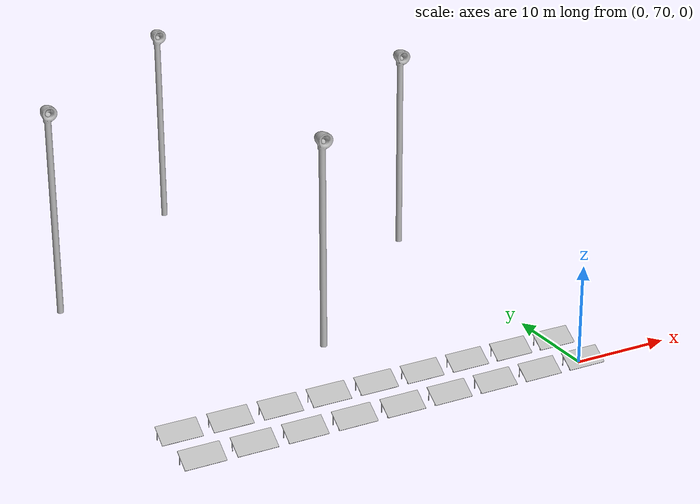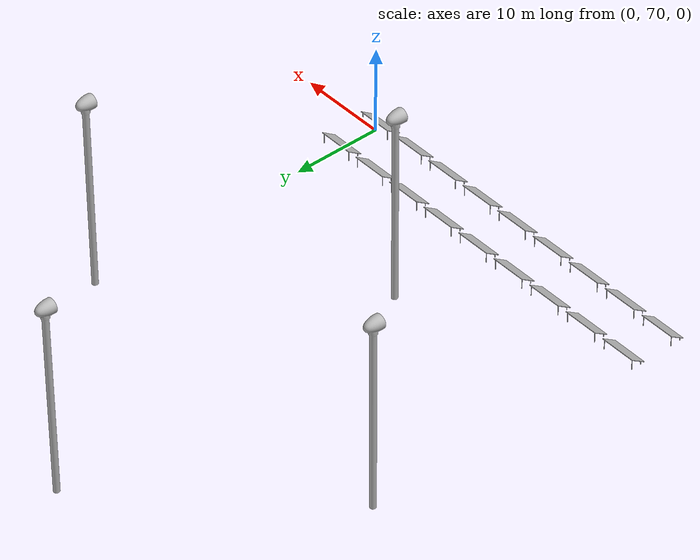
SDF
<sdf version="1.4">
 <world name="ATLAS_renewable_power_plant_world">
  <physics type="ode">
   <ode>
    <solver><type>quick</type><iters>10</iters><sor>1.3</sor></solver>
    <constraints>
     <cfm>0</cfm>
     <erp>0.2</erp>
     <contact_max_correcting_vel>100</contact_max_correcting_vel>
     <contact_surface_layer>0.001</contact_surface_layer>
    </constraints>
   </ode>
   <max_step_size>0.004</max_step_size>
   <real_time_factor>1</real_time_factor>
   <real_time_update_rate>250</real_time_update_rate>
   <gravity>0 0 -9.8</gravity>
   <magnetic_field>6e-06 2.3e-05 -4.2e-05</magnetic_field>
  </physics>
  <include><uri>model://sun</uri></include>
  <include>
   <uri>model://spinning_wind_turbine_base</uri>
   <pose>-20 85 0 0 0 0</pose>
   <name>spinning_wind_turbine_base_1</name>
  </include>
  <include>
   <uri>model://spinning_wind_turbine_base</uri>
   <pose>-40 105 0 0 0 0</pose>
   <name>spinning_wind_turbine_base_2</name>
  </include>
  <include>
   <uri>model://spinning_wind_turbine_base</uri>
   <pose>-20 125 0 0 0 0</pose>
   <name>spinning_wind_turbine_base_3</name>
  </include>
  <include>
   <uri>model://spinning_wind_turbine_base</uri>
   <pose>0 105 0 0 0 0</pose>
   <name>spinning_wind_turbine_base_4</name>
  </include>
  <include><uri>model://solar_panel</uri><pose>0 70 0 0 0 0</pose><name>solar_panel_11</name></include>
  <include><uri>model://solar_panel</uri><pose>-5 70 0 0 0 0</pose><name>solar_panel_2</name></include>
  <include><uri>model://solar_panel</uri><pose>-10 70 0 0 0 0</pose><name>solar_panel_3</name></include>
  <include><uri>model://solar_panel</uri><pose>-15 70 0 0 0 0</pose><name>solar_panel_4</name></include>
  <include><uri>model://solar_panel</uri><pose>-20 70 0 0 0 0</pose><name>solar_panel_5</name></include>
  <include><uri>model://solar_panel</uri><pose>-25 70 0 0 0 0</pose><name>solar_panel_6</name></include>
  <include><uri>model://solar_panel</uri><pose>-30 70 0 0 0 0</pose><name>solar_panel_7</name></include>
  <include><uri>model://solar_panel</uri><pose>-35 70 0 0 0 0</pose><name>solar_panel_8</name></include>
  <include><uri>model://solar_panel</uri><pose>-40 70 0 0 0 0</pose><name>solar_panel_9</name></include>
  <include><uri>model://solar_panel</uri><pose>0 75 0 0 0 0</pose><name>solar_panel_10</name></include>
  <include><uri>model://solar_panel</uri><pose>-5 75 0 0 0 0</pose><name>solar_panel_1</name></include>
  <include><uri>model://solar_panel</uri><pose>-10 75 0 0 0 0</pose><name>solar_panel_12</name></include>
  <include><uri>model://solar_panel</uri><pose>-15 75 0 0 0 0</pose><name>solar_panel_13</name></include>
  <include><uri>model://solar_panel</uri><pose>-20 75 0 0 0 0</pose><name>solar_panel_14</name></include>
  <include><uri>model://solar_panel</uri><pose>-25 75 0 0 0 0</pose><name>solar_panel_15</name></include>
  <include><uri>model://solar_panel</uri><pose>-30 75 0 0 0 0</pose><name>solar_panel_16</name></include>
  <include><uri>model://solar_panel</uri><pose>-35 75 0 0 0 0</pose><name>solar_panel_17</name></include>
  <include><uri>model://solar_panel</uri><pose>-40 75 0 0 0 0</pose><name>solar_panel_18</name></include>
 </world>
</sdf>

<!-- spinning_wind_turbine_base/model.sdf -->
<sdf version="1.6">
  <model name="spinning_wind_turbine_base">
    <static>true</static>
    <link name="link">
      <pose>0 0 0 1.570796327 0 0</pose>
      <visual name="visual">
        <geometry>
          <mesh>
            <uri>model://spinning_wind_turbine_base/meshes/windmill_base.obj</uri>
            <scale>1 1 1</scale>
          </mesh>
        </geometry>
      </visual>
    </link>
  </model>
</sdf>

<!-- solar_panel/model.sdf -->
<sdf version="1.5">
  <model name="solar_panel">
    <static>true</static>
    <link name="link">
      <pose>0 0 0 1.570796327 0 0</pose>
      <visual name="visual">
        <geometry>
          <mesh>
            <uri>model://solar_panel/meshes/solar_panel.obj</uri>
            <scale>1 1 1</scale>
          </mesh>
        </geometry>
      </visual>
    </link>
  </model>
</sdf>
